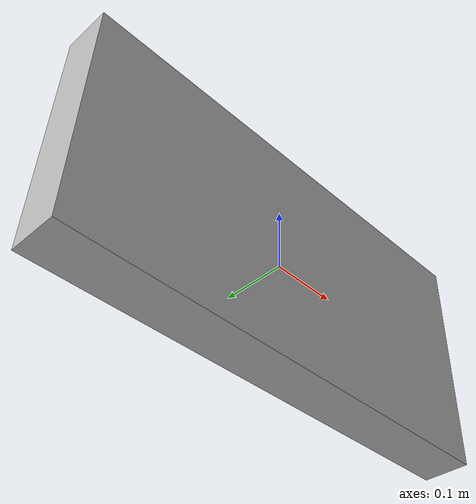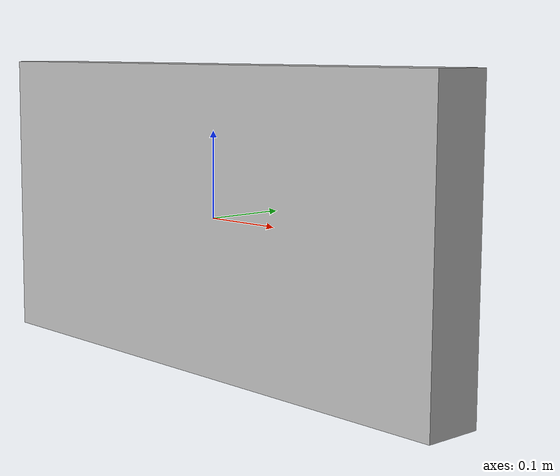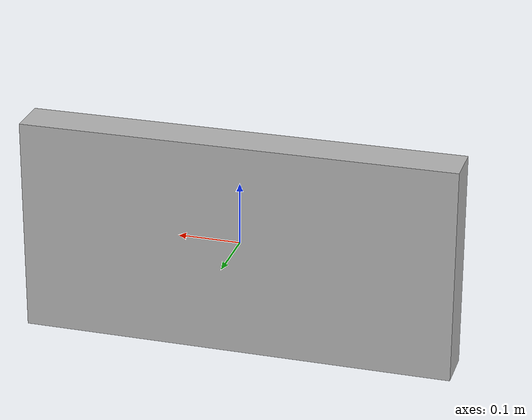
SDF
<?xml version="1.0" ?>
<sdf version="1.6">
  <model name="bicycle_picture">
    <static>true</static>
    <link name="box">
      <pose>0 0 0 0 0 0</pose>
      <collision name="collision">
        <geometry>
          <box>
            <size>0.55 0.075 0.20</size>
          </box>
        </geometry>
      </collision>
      <visual name="visual">
        <geometry>
          <box>
            <size>0.70 0.070 0.350</size>
          </box>
        </geometry>
        <material>
          <script>
            <uri>model://bicycle_picture/materials/scripts</uri>
            <uri>model://bicycle_picture/materials/textures</uri>
            <name>bicycle_picture</name>
          </script>
        </material>
      </visual>
    </link>
  </model>
</sdf>
